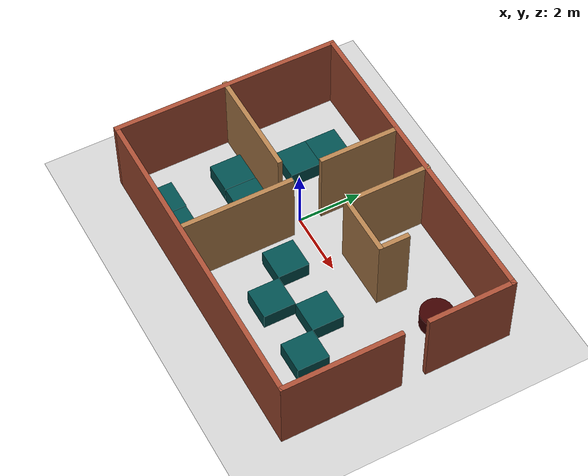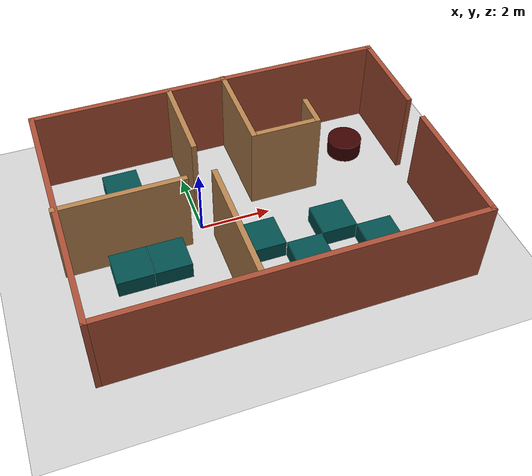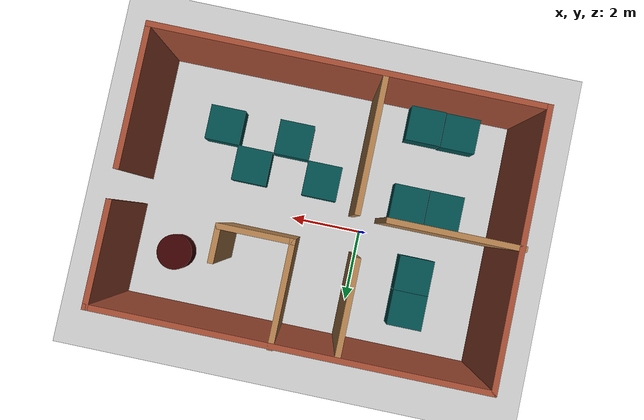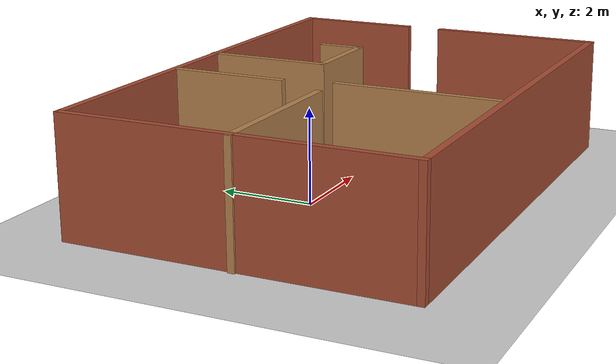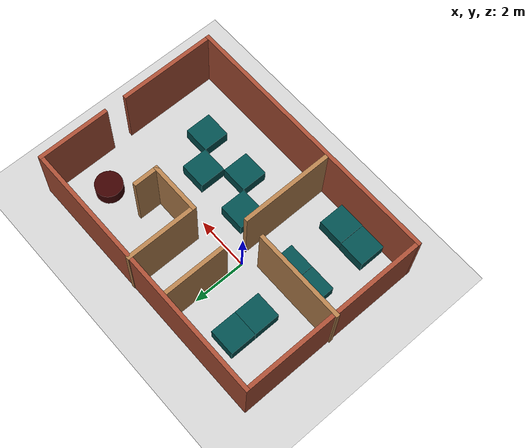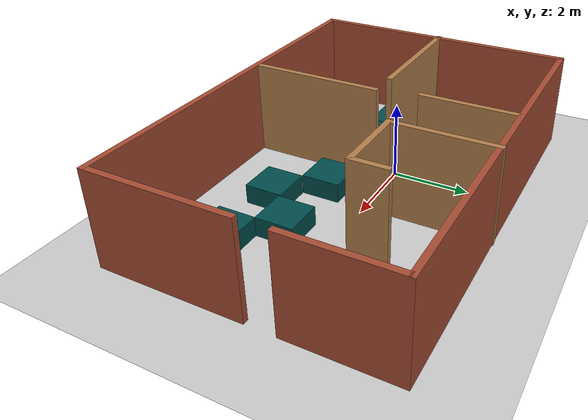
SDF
<sdf version="1.7">
 <world name="default">
  <light name="sun" type="directional">
   <pose>0 0 10 0 -0 0</pose>
   <diffuse>0.8 0.8 0.8 1</diffuse>
   <specular>0.2 0.2 0.2 1</specular>
   <attenuation>
    <range>1000</range>
    <constant>0.9</constant>
    <linear>0.01</linear>
    <quadratic>0.001</quadratic>
   </attenuation>
   <direction>-0.5 0.1 -0.9</direction>
   <spot><inner_angle>0</inner_angle><outer_angle>0</outer_angle><falloff>0</falloff></spot>
  </light>
  <model name="ground_plane">
   <static>1</static>
   <link name="link">
    <collision name="collision">
     <geometry><plane><normal>0 0 1</normal><size>100 100</size></plane></geometry>
     <surface>
      <contact><collide_bitmask>65535</collide_bitmask></contact>
      <friction><ode><mu>100</mu><mu2>50</mu2></ode></friction>
     </surface>
    </collision>
    <visual name="visual">
     <cast_shadows>0</cast_shadows>
     <geometry><plane><normal>0 0 1</normal><size>100 100</size></plane></geometry>
     <material>
      <script><uri>file://media/materials/scripts/gazebo.material</uri><name>Gazebo/Grey</name></script>
     </material>
    </visual>
   </link>
  </model>
  <gravity>0 0 -9.8</gravity>
  <magnetic_field>6e-06 2.3e-05 -4.2e-05</magnetic_field>
  <atmosphere type="adiabatic"/>
  <physics type="ode">
   <max_step_size>0.001</max_step_size>
   <real_time_factor>1</real_time_factor>
   <real_time_update_rate>1000</real_time_update_rate>
  </physics>
  <scene><ambient>0.4 0.4 0.4 1</ambient><background>0.7 0.7 0.7 1</background><shadows>1</shadows></scene>
  <spherical_coordinates>
   <surface_model>EARTH_WGS84</surface_model>
   <latitude_deg>0</latitude_deg>
   <longitude_deg>0</longitude_deg>
   <elevation>0</elevation>
   <heading_deg>0</heading_deg>
  </spherical_coordinates>
  <model name="FloorPlan">
   <pose>1.25438 -0.389256 0 0 -0 0</pose>
   <link name="Wall_0">
    <collision name="Wall_0_Collision">
     <geometry><box><size>10.25 0.15 2.5</size></box></geometry>
     <pose>0 0 1.25 0 -0 0</pose>
    </collision>
    <visual name="Wall_0_Visual">
     <pose>0 0 1.25 0 -0 0</pose>
     <geometry><box><size>10.25 0.15 2.5</size></box></geometry>
     <material>
      <script><uri>file://media/materials/scripts/gazebo.material</uri><name>Gazebo/Bricks</name></script>
      <ambient>1 1 1 1</ambient>
     </material>
     <meta><layer>0</layer></meta>
    </visual>
    <pose>0.023131 3.53844 0 0 -0 0</pose>
   </link>
   <link name="Wall_10">
    <collision name="Wall_10_Collision">
     <geometry><box><size>2 0.15 2.5</size></box></geometry>
     <pose>0 0 1.25 0 -0 0</pose>
    </collision>
    <visual name="Wall_10_Visual">
     <pose>0 0 1.25 0 -0 0</pose>
     <geometry><box><size>2 0.15 2.5</size></box></geometry>
     <material>
      <script><uri>file://media/materials/scripts/gazebo.material</uri><name>Gazebo/Wood</name></script>
      <ambient>1 1 1 1</ambient>
     </material>
     <meta><layer>0</layer></meta>
    </visual>
    <pose>1.40322 0.961565 0 0 -0 0</pose>
   </link>
   <link name="Wall_11">
    <collision name="Wall_11_Collision">
     <geometry><box><size>1 0.15 2.5</size></box></geometry>
     <pose>0 0 1.25 0 -0 0</pose>
    </collision>
    <visual name="Wall_11_Visual">
     <pose>0 0 1.25 0 -0 0</pose>
     <geometry><box><size>1 0.15 2.5</size></box></geometry>
     <material>
      <script><uri>file://media/materials/scripts/gazebo.material</uri><name>Gazebo/Wood</name></script>
      <ambient>1 1 1 1</ambient>
     </material>
     <meta><layer>0</layer></meta>
    </visual>
    <pose>2.32822 1.38657 0 0 -0 1.5708</pose>
   </link>
   <link name="Wall_13">
    <collision name="Wall_13_Collision">
     <geometry><box><size>3.5 0.15 2.5</size></box></geometry>
     <pose>0 0 1.25 0 -0 0</pose>
    </collision>
    <visual name="Wall_13_Visual">
     <pose>0 0 1.25 0 -0 0</pose>
     <geometry><box><size>3.5 0.15 2.5</size></box></geometry>
     <material>
      <script><uri>file://media/materials/scripts/gazebo.material</uri><name>Gazebo/Wood</name></script>
      <ambient>1 1 1 1</ambient>
     </material>
     <meta><layer>0</layer></meta>
    </visual>
    <pose>-3.39813 -0.023679 0 0 -0 0</pose>
   </link>
   <link name="Wall_15">
    <collision name="Wall_15_Collision">
     <geometry><box><size>3.5 0.15 2.5</size></box></geometry>
     <pose>0 0 1.25 0 -0 0</pose>
    </collision>
    <visual name="Wall_15_Visual">
     <pose>0 0 1.25 0 -0 0</pose>
     <geometry><box><size>3.5 0.15 2.5</size></box></geometry>
     <material>
      <script><uri>file://media/materials/scripts/gazebo.material</uri><name>Gazebo/Wood</name></script>
      <ambient>1 1 1 1</ambient>
     </material>
     <meta><layer>0</layer></meta>
    </visual>
    <pose>-0.932752 -1.74494 0 0 -0 -1.5708</pose>
   </link>
   <link name="Wall_17">
    <collision name="Wall_17_Collision">
     <geometry><box><size>2.5 0.15 2.5</size></box></geometry>
     <pose>0 0 1.25 0 -0 0</pose>
    </collision>
    <visual name="Wall_17_Visual">
     <pose>0 0 1.25 0 -0 0</pose>
     <geometry><box><size>2.5 0.15 2.5</size></box></geometry>
     <material>
      <script><uri>file://media/materials/scripts/gazebo.material</uri><name>Gazebo/Wood</name></script>
      <ambient>1 1 1 1</ambient>
     </material>
     <meta><layer>0</layer></meta>
    </visual>
    <pose>-1.16406 2.26159 0 0 -0 1.5708</pose>
   </link>
   <link name="Wall_2">
    <collision name="Wall_2_Collision">
     <geometry><box><size>10.25 0.15 2.5</size></box></geometry>
     <pose>0 0 1.25 0 -0 0</pose>
    </collision>
    <visual name="Wall_2_Visual">
     <pose>0 0 1.25 0 -0 0</pose>
     <geometry><box><size>10.25 0.15 2.5</size></box></geometry>
     <material>
      <script><uri>file://media/materials/scripts/gazebo.material</uri><name>Gazebo/Bricks</name></script>
      <ambient>1 1 1 1</ambient>
     </material>
     <meta><layer>0</layer></meta>
    </visual>
    <pose>0.023131 -3.56156 0 0 -0 3.14159</pose>
   </link>
   <link name="Wall_3">
    <collision name="Wall_3_Collision">
     <geometry><box><size>7.25 0.15 2.5</size></box></geometry>
     <pose>0 0 1.25 0 -0 0</pose>
    </collision>
    <visual name="Wall_3_Visual">
     <pose>0 0 1.25 0 -0 0</pose>
     <geometry><box><size>7.25 0.15 2.5</size></box></geometry>
     <material>
      <script><uri>file://media/materials/scripts/gazebo.material</uri><name>Gazebo/Bricks</name></script>
      <ambient>1 1 1 1</ambient>
     </material>
     <meta><layer>0</layer></meta>
    </visual>
    <pose>-5.02687 -0.011565 0 0 -0 1.5708</pose>
   </link>
   <link name="Wall_5">
    <collision name="Wall_5_Collision">
     <geometry><box><size>2.75 0.15 2.5</size></box></geometry>
     <pose>0 0 1.25 0 -0 0</pose>
    </collision>
    <visual name="Wall_5_Visual">
     <pose>0 0 1.25 0 -0 0</pose>
     <geometry><box><size>2.75 0.15 2.5</size></box></geometry>
     <material>
      <script><uri>file://media/materials/scripts/gazebo.material</uri><name>Gazebo/Bricks</name></script>
      <ambient>1 1 1 1</ambient>
     </material>
     <meta><layer>0</layer></meta>
    </visual>
    <pose>5.07313 2.23843 0 0 -0 -1.5708</pose>
   </link>
   <link name="Wall_7">
    <collision name="Wall_7_Collision">
     <geometry><box><size>3.75 0.15 2.5</size></box></geometry>
     <pose>0 0 1.25 0 -0 0</pose>
    </collision>
    <visual name="Wall_7_Visual">
     <pose>0 0 1.25 0 -0 0</pose>
     <geometry><box><size>3.75 0.15 2.5</size></box></geometry>
     <material>
      <script><uri>file://media/materials/scripts/gazebo.material</uri><name>Gazebo/Bricks</name></script>
      <ambient>1 1 1 1</ambient>
     </material>
     <meta><layer>0</layer></meta>
    </visual>
    <pose>5.07313 -1.76157 0 0 -0 1.5708</pose>
   </link>
   <link name="Wall_9">
    <collision name="Wall_9_Collision">
     <geometry><box><size>2.75 0.15 2.5</size></box></geometry>
     <pose>0 0 1.25 0 -0 0</pose>
    </collision>
    <visual name="Wall_9_Visual">
     <pose>0 0 1.25 0 -0 0</pose>
     <geometry><box><size>2.75 0.15 2.5</size></box></geometry>
     <material>
      <script><uri>file://media/materials/scripts/gazebo.material</uri><name>Gazebo/Wood</name></script>
      <ambient>1 1 1 1</ambient>
     </material>
     <meta><layer>0</layer></meta>
    </visual>
    <pose>0.478215 2.26157 0 0 -0 -1.5708</pose>
   </link>
   <static>1</static>
  </model>
  <model name="unit_box">
   <link name="link">
    <inertial>
     <mass>1</mass>
     <inertia>
      <ixx>0.166667</ixx>
      <ixy>0</ixy>
      <ixz>0</ixz>
      <iyy>0.166667</iyy>
      <iyz>0</iyz>
      <izz>0.166667</izz>
     </inertia>
    </inertial>
    <visual name="visual">
     <geometry><box><size>1 1 1</size></box></geometry>
     <material>
      <script><name>Gazebo/Grey</name><uri>file://media/materials/scripts/gazebo.material</uri></script>
      <shader type="pixel"><normal_map>__default__</normal_map></shader>
      <ambient>0 0.3 0.3 1</ambient>
      <diffuse>0.7 0.7 0.7 1</diffuse>
      <specular>0.01 0.01 0.01 1</specular>
      <emissive>0 0 0 1</emissive>
     </material>
    </visual>
    <collision name="collision">
     <geometry><box><size>1 1 1</size></box></geometry>
     <surface>
      <friction>
       <ode><mu>1</mu><mu2>1</mu2><fdir1>0 0 0</fdir1><slip1>0</slip1><slip2>0</slip2></ode>
       <torsional>
        <coefficient>1</coefficient>
        <patch_radius>0</patch_radius>
        <surface_radius>0</surface_radius>
        <use_patch_radius>1</use_patch_radius>
        <ode><slip>0</slip></ode>
       </torsional>
      </friction>
      <bounce><restitution_coefficient>0</restitution_coefficient><threshold>1e+06</threshold></bounce>
      <contact>
       <collide_without_contact>0</collide_without_contact>
       <collide_without_contact_bitmask>1</collide_without_contact_bitmask>
       <collide_bitmask>1</collide_bitmask>
       <ode>
        <soft_cfm>0</soft_cfm>
        <soft_erp>0.2</soft_erp>
        <kp>1e+13</kp>
        <kd>1</kd>
        <max_vel>0.01</max_vel>
        <min_depth>0</min_depth>
       </ode>
       <bullet>
        <split_impulse>1</split_impulse>
        <split_impulse_penetration_threshold>-0.01</split_impulse_penetration_threshold>
        <soft_cfm>0</soft_cfm>
        <soft_erp>0.2</soft_erp>
        <kp>1e+13</kp>
        <kd>1</kd>
       </bullet>
      </contact>
     </surface>
    </collision>
   </link>
   <link name="link_1">
    <inertial>
     <mass>1</mass>
     <inertia><ixx>0.145833</ixx><ixy>0</ixy><ixz>0</ixz><iyy>0.145833</iyy><iyz>0</iyz><izz>0.125</izz></inertia>
    </inertial>
    <pose>0.645534 3.85087 0 0 -0 0</pose>
    <visual name="visual">
     <geometry><cylinder><radius>0.5</radius><length>1</length></cylinder></geometry>
     <material>
      <lighting>1</lighting>
      <script><uri>file://media/materials/scripts/gazebo.material</uri><name>Gazebo/Grey</name></script>
      <shader type="pixel"><normal_map>__default__</normal_map></shader>
      <ambient>0.233 0 0 0</ambient>
      <diffuse>0.7 0.7 0.7 1</diffuse>
      <specular>0.01 0.01 0.01 1</specular>
      <emissive>0 0 0 1</emissive>
     </material>
    </visual>
    <collision name="collision">
     <geometry><cylinder><radius>0.5</radius><length>1</length></cylinder></geometry>
     <surface>
      <friction>
       <ode><mu>1</mu><mu2>1</mu2><fdir1>0 0 0</fdir1><slip1>0</slip1><slip2>0</slip2></ode>
       <torsional>
        <coefficient>1</coefficient>
        <patch_radius>0</patch_radius>
        <surface_radius>0</surface_radius>
        <use_patch_radius>1</use_patch_radius>
        <ode><slip>0</slip></ode>
       </torsional>
      </friction>
      <bounce><restitution_coefficient>0</restitution_coefficient><threshold>1e+06</threshold></bounce>
      <contact>
       <collide_without_contact>0</collide_without_contact>
       <collide_without_contact_bitmask>1</collide_without_contact_bitmask>
       <collide_bitmask>1</collide_bitmask>
       <ode>
        <soft_cfm>0</soft_cfm>
        <soft_erp>0.2</soft_erp>
        <kp>1e+13</kp>
        <kd>1</kd>
        <max_vel>0.01</max_vel>
        <min_depth>0</min_depth>
       </ode>
       <bullet>
        <split_impulse>1</split_impulse>
        <split_impulse_penetration_threshold>-0.01</split_impulse_penetration_threshold>
        <soft_cfm>0</soft_cfm>
        <soft_erp>0.2</soft_erp>
        <kp>1e+13</kp>
        <kd>1</kd>
       </bullet>
      </contact>
     </surface>
    </collision>
   </link>
   <link name="link_clone">
    <inertial>
     <mass>1</mass>
     <inertia>
      <ixx>0.166667</ixx>
      <ixy>0</ixy>
      <ixz>0</ixz>
      <iyy>0.166667</iyy>
      <iyz>0</iyz>
      <izz>0.166667</izz>
     </inertia>
    </inertial>
    <pose>-0.989948 0.999122 -0 0 -0 0</pose>
    <visual name="visual">
     <geometry><box><size>1 1 1</size></box></geometry>
     <material>
      <script><name>Gazebo/Grey</name><uri>file://media/materials/scripts/gazebo.material</uri></script>
      <shader type="pixel"><normal_map>__default__</normal_map></shader>
      <ambient>0 0.3 0.3 1</ambient>
      <diffuse>0.7 0.7 0.7 1</diffuse>
      <specular>0.01 0.01 0.01 1</specular>
      <emissive>0 0 0 1</emissive>
     </material>
    </visual>
    <collision name="collision">
     <geometry><box><size>1 1 1</size></box></geometry>
     <surface>
      <friction>
       <ode><mu>1</mu><mu2>1</mu2><fdir1>0 0 0</fdir1><slip1>0</slip1><slip2>0</slip2></ode>
       <torsional>
        <coefficient>1</coefficient>
        <patch_radius>0</patch_radius>
        <surface_radius>0</surface_radius>
        <use_patch_radius>1</use_patch_radius>
        <ode><slip>0</slip></ode>
       </torsional>
      </friction>
      <bounce><restitution_coefficient>0</restitution_coefficient><threshold>1e+06</threshold></bounce>
      <contact>
       <collide_without_contact>0</collide_without_contact>
       <collide_without_contact_bitmask>1</collide_without_contact_bitmask>
       <collide_bitmask>1</collide_bitmask>
       <ode>
        <soft_cfm>0</soft_cfm>
        <soft_erp>0.2</soft_erp>
        <kp>1e+13</kp>
        <kd>1</kd>
        <max_vel>0.01</max_vel>
        <min_depth>0</min_depth>
       </ode>
       <bullet>
        <split_impulse>1</split_impulse>
        <split_impulse_penetration_threshold>-0.01</split_impulse_penetration_threshold>
        <soft_cfm>0</soft_cfm>
        <soft_erp>0.2</soft_erp>
        <kp>1e+13</kp>
        <kd>1</kd>
       </bullet>
      </contact>
     </surface>
    </collision>
   </link>
   <link name="link_clone_0">
    <inertial>
     <mass>1</mass>
     <inertia>
      <ixx>0.166667</ixx>
      <ixy>0</ixy>
      <ixz>0</ixz>
      <iyy>0.166667</iyy>
      <iyz>0</iyz>
      <izz>0.166667</izz>
     </inertia>
    </inertial>
    <pose>-2.02543 0.018139 0 0 -0 0</pose>
    <visual name="visual">
     <geometry><box><size>1 1 1</size></box></geometry>
     <material>
      <script><name>Gazebo/Grey</name><uri>file://media/materials/scripts/gazebo.material</uri></script>
      <shader type="pixel"><normal_map>__default__</normal_map></shader>
      <ambient>0 0.3 0.3 1</ambient>
      <diffuse>0.7 0.7 0.7 1</diffuse>
      <specular>0.01 0.01 0.01 1</specular>
      <emissive>0 0 0 1</emissive>
     </material>
    </visual>
    <collision name="collision">
     <geometry><box><size>1 1 1</size></box></geometry>
     <surface>
      <friction>
       <ode><mu>1</mu><mu2>1</mu2><fdir1>0 0 0</fdir1><slip1>0</slip1><slip2>0</slip2></ode>
       <torsional>
        <coefficient>1</coefficient>
        <patch_radius>0</patch_radius>
        <surface_radius>0</surface_radius>
        <use_patch_radius>1</use_patch_radius>
        <ode><slip>0</slip></ode>
       </torsional>
      </friction>
      <bounce><restitution_coefficient>0</restitution_coefficient><threshold>1e+06</threshold></bounce>
      <contact>
       <collide_without_contact>0</collide_without_contact>
       <collide_without_contact_bitmask>1</collide_without_contact_bitmask>
       <collide_bitmask>1</collide_bitmask>
       <ode>
        <soft_cfm>0</soft_cfm>
        <soft_erp>0.2</soft_erp>
        <kp>1e+13</kp>
        <kd>1</kd>
        <max_vel>0.01</max_vel>
        <min_depth>0</min_depth>
       </ode>
       <bullet>
        <split_impulse>1</split_impulse>
        <split_impulse_penetration_threshold>-0.01</split_impulse_penetration_threshold>
        <soft_cfm>0</soft_cfm>
        <soft_erp>0.2</soft_erp>
        <kp>1e+13</kp>
        <kd>1</kd>
       </bullet>
      </contact>
     </surface>
    </collision>
   </link>
   <link name="link_clone_1">
    <inertial>
     <mass>1</mass>
     <inertia>
      <ixx>0.166667</ixx>
      <ixy>0</ixy>
      <ixz>0</ixz>
      <iyy>0.166667</iyy>
      <iyz>0</iyz>
      <izz>0.166667</izz>
     </inertia>
    </inertial>
    <pose>-5.62236 -1.14451 0 0 -0 0</pose>
    <visual name="visual">
     <geometry><box><size>1 1 1</size></box></geometry>
     <material>
      <script><name>Gazebo/Grey</name><uri>file://media/materials/scripts/gazebo.material</uri></script>
      <shader type="pixel"><normal_map>__default__</normal_map></shader>
      <ambient>0 0.3 0.3 1</ambient>
      <diffuse>0.7 0.7 0.7 1</diffuse>
      <specular>0.01 0.01 0.01 1</specular>
      <emissive>0 0 0 1</emissive>
     </material>
    </visual>
    <collision name="collision">
     <geometry><box><size>1 1 1</size></box></geometry>
     <surface>
      <friction>
       <ode><mu>1</mu><mu2>1</mu2><fdir1>0 0 0</fdir1><slip1>0</slip1><slip2>0</slip2></ode>
       <torsional>
        <coefficient>1</coefficient>
        <patch_radius>0</patch_radius>
        <surface_radius>0</surface_radius>
        <use_patch_radius>1</use_patch_radius>
        <ode><slip>0</slip></ode>
       </torsional>
      </friction>
      <bounce><restitution_coefficient>0</restitution_coefficient><threshold>1e+06</threshold></bounce>
      <contact>
       <collide_without_contact>0</collide_without_contact>
       <collide_without_contact_bitmask>1</collide_without_contact_bitmask>
       <collide_bitmask>1</collide_bitmask>
       <ode>
        <soft_cfm>0</soft_cfm>
        <soft_erp>0.2</soft_erp>
        <kp>1e+13</kp>
        <kd>1</kd>
        <max_vel>0.01</max_vel>
        <min_depth>0</min_depth>
       </ode>
       <bullet>
        <split_impulse>1</split_impulse>
        <split_impulse_penetration_threshold>-0.01</split_impulse_penetration_threshold>
        <soft_cfm>0</soft_cfm>
        <soft_erp>0.2</soft_erp>
        <kp>1e+13</kp>
        <kd>1</kd>
       </bullet>
      </contact>
     </surface>
    </collision>
   </link>
   <link name="link_clone_2">
    <inertial>
     <mass>1</mass>
     <inertia>
      <ixx>0.166667</ixx>
      <ixy>0</ixy>
      <ixz>0</ixz>
      <iyy>0.166667</iyy>
      <iyz>0</iyz>
      <izz>0.166667</izz>
     </inertia>
    </inertial>
    <pose>-6.63968 -1.12634 -0 0 -0 0</pose>
    <visual name="visual">
     <geometry><box><size>1 1 1</size></box></geometry>
     <material>
      <script><name>Gazebo/Grey</name><uri>file://media/materials/scripts/gazebo.material</uri></script>
      <shader type="pixel"><normal_map>__default__</normal_map></shader>
      <ambient>0 0.3 0.3 1</ambient>
      <diffuse>0.7 0.7 0.7 1</diffuse>
      <specular>0.01 0.01 0.01 1</specular>
      <emissive>0 0 0 1</emissive>
     </material>
    </visual>
    <collision name="collision">
     <geometry><box><size>1 1 1</size></box></geometry>
     <surface>
      <friction>
       <ode><mu>1</mu><mu2>1</mu2><fdir1>0 0 0</fdir1><slip1>0</slip1><slip2>0</slip2></ode>
       <torsional>
        <coefficient>1</coefficient>
        <patch_radius>0</patch_radius>
        <surface_radius>0</surface_radius>
        <use_patch_radius>1</use_patch_radius>
        <ode><slip>0</slip></ode>
       </torsional>
      </friction>
      <bounce><restitution_coefficient>0</restitution_coefficient><threshold>1e+06</threshold></bounce>
      <contact>
       <collide_without_contact>0</collide_without_contact>
       <collide_without_contact_bitmask>1</collide_without_contact_bitmask>
       <collide_bitmask>1</collide_bitmask>
       <ode>
        <soft_cfm>0</soft_cfm>
        <soft_erp>0.2</soft_erp>
        <kp>1e+13</kp>
        <kd>1</kd>
        <max_vel>0.01</max_vel>
        <min_depth>0</min_depth>
       </ode>
       <bullet>
        <split_impulse>1</split_impulse>
        <split_impulse_penetration_threshold>-0.01</split_impulse_penetration_threshold>
        <soft_cfm>0</soft_cfm>
        <soft_erp>0.2</soft_erp>
        <kp>1e+13</kp>
        <kd>1</kd>
       </bullet>
      </contact>
     </surface>
    </collision>
   </link>
   <link name="link_clone_3">
    <inertial>
     <mass>1</mass>
     <inertia>
      <ixx>0.166667</ixx>
      <ixy>0</ixy>
      <ixz>0</ixz>
      <iyy>0.166667</iyy>
      <iyz>0</iyz>
      <izz>0.166667</izz>
     </inertia>
    </inertial>
    <pose>-5.6042 1.14445 0 0 -0 0</pose>
    <visual name="visual">
     <geometry><box><size>1 1 1</size></box></geometry>
     <material>
      <script><name>Gazebo/Grey</name><uri>file://media/materials/scripts/gazebo.material</uri></script>
      <shader type="pixel"><normal_map>__default__</normal_map></shader>
      <ambient>0 0.3 0.3 1</ambient>
      <diffuse>0.7 0.7 0.7 1</diffuse>
      <specular>0.01 0.01 0.01 1</specular>
      <emissive>0 0 0 1</emissive>
     </material>
    </visual>
    <collision name="collision">
     <geometry><box><size>1 1 1</size></box></geometry>
     <surface>
      <friction>
       <ode><mu>1</mu><mu2>1</mu2><fdir1>0 0 0</fdir1><slip1>0</slip1><slip2>0</slip2></ode>
       <torsional>
        <coefficient>1</coefficient>
        <patch_radius>0</patch_radius>
        <surface_radius>0</surface_radius>
        <use_patch_radius>1</use_patch_radius>
        <ode><slip>0</slip></ode>
       </torsional>
      </friction>
      <bounce><restitution_coefficient>0</restitution_coefficient><threshold>1e+06</threshold></bounce>
      <contact>
       <collide_without_contact>0</collide_without_contact>
       <collide_without_contact_bitmask>1</collide_without_contact_bitmask>
       <collide_bitmask>1</collide_bitmask>
       <ode>
        <soft_cfm>0</soft_cfm>
        <soft_erp>0.2</soft_erp>
        <kp>1e+13</kp>
        <kd>1</kd>
        <max_vel>0.01</max_vel>
        <min_depth>0</min_depth>
       </ode>
       <bullet>
        <split_impulse>1</split_impulse>
        <split_impulse_penetration_threshold>-0.01</split_impulse_penetration_threshold>
        <soft_cfm>0</soft_cfm>
        <soft_erp>0.2</soft_erp>
        <kp>1e+13</kp>
        <kd>1</kd>
       </bullet>
      </contact>
     </surface>
    </collision>
   </link>
   <link name="link_clone_4">
    <inertial>
     <mass>1</mass>
     <inertia>
      <ixx>0.166667</ixx>
      <ixy>0</ixy>
      <ixz>0</ixz>
      <iyy>0.166667</iyy>
      <iyz>0</iyz>
      <izz>0.166667</izz>
     </inertia>
    </inertial>
    <pose>-6.62151 1.14445 0 0 -0 0</pose>
    <visual name="visual">
     <geometry><box><size>1 1 1</size></box></geometry>
     <material>
      <script><name>Gazebo/Grey</name><uri>file://media/materials/scripts/gazebo.material</uri></script>
      <shader type="pixel"><normal_map>__default__</normal_map></shader>
      <ambient>0 0.3 0.3 1</ambient>
      <diffuse>0.7 0.7 0.7 1</diffuse>
      <specular>0.01 0.01 0.01 1</specular>
      <emissive>0 0 0 1</emissive>
     </material>
    </visual>
    <collision name="collision">
     <geometry><box><size>1 1 1</size></box></geometry>
     <surface>
      <friction>
       <ode><mu>1</mu><mu2>1</mu2><fdir1>0 0 0</fdir1><slip1>0</slip1><slip2>0</slip2></ode>
       <torsional>
        <coefficient>1</coefficient>
        <patch_radius>0</patch_radius>
        <surface_radius>0</surface_radius>
        <use_patch_radius>1</use_patch_radius>
        <ode><slip>0</slip></ode>
       </torsional>
      </friction>
      <bounce><restitution_coefficient>0</restitution_coefficient><threshold>1e+06</threshold></bounce>
      <contact>
       <collide_without_contact>0</collide_without_contact>
       <collide_without_contact_bitmask>1</collide_without_contact_bitmask>
       <collide_bitmask>1</collide_bitmask>
       <ode>
        <soft_cfm>0</soft_cfm>
        <soft_erp>0.2</soft_erp>
        <kp>1e+13</kp>
        <kd>1</kd>
        <max_vel>0.01</max_vel>
        <min_depth>0</min_depth>
       </ode>
       <bullet>
        <split_impulse>1</split_impulse>
        <split_impulse_penetration_threshold>-0.01</split_impulse_penetration_threshold>
        <soft_cfm>0</soft_cfm>
        <soft_erp>0.2</soft_erp>
        <kp>1e+13</kp>
        <kd>1</kd>
       </bullet>
      </contact>
     </surface>
    </collision>
   </link>
   <link name="link_clone_5">
    <inertial>
     <mass>1</mass>
     <inertia>
      <ixx>0.166667</ixx>
      <ixy>0</ixy>
      <ixz>0</ixz>
      <iyy>0.166667</iyy>
      <iyz>0</iyz>
      <izz>0.166667</izz>
     </inertia>
    </inertial>
    <pose>-6.14918 4.10556 -0 0 -0 0</pose>
    <visual name="visual">
     <geometry><box><size>1 1 1</size></box></geometry>
     <material>
      <script><name>Gazebo/Grey</name><uri>file://media/materials/scripts/gazebo.material</uri></script>
      <shader type="pixel"><normal_map>__default__</normal_map></shader>
      <ambient>0 0.3 0.3 1</ambient>
      <diffuse>0.7 0.7 0.7 1</diffuse>
      <specular>0.01 0.01 0.01 1</specular>
      <emissive>0 0 0 1</emissive>
     </material>
    </visual>
    <collision name="collision">
     <geometry><box><size>1 1 1</size></box></geometry>
     <surface>
      <friction>
       <ode><mu>1</mu><mu2>1</mu2><fdir1>0 0 0</fdir1><slip1>0</slip1><slip2>0</slip2></ode>
       <torsional>
        <coefficient>1</coefficient>
        <patch_radius>0</patch_radius>
        <surface_radius>0</surface_radius>
        <use_patch_radius>1</use_patch_radius>
        <ode><slip>0</slip></ode>
       </torsional>
      </friction>
      <bounce><restitution_coefficient>0</restitution_coefficient><threshold>1e+06</threshold></bounce>
      <contact>
       <collide_without_contact>0</collide_without_contact>
       <collide_without_contact_bitmask>1</collide_without_contact_bitmask>
       <collide_bitmask>1</collide_bitmask>
       <ode>
        <soft_cfm>0</soft_cfm>
        <soft_erp>0.2</soft_erp>
        <kp>1e+13</kp>
        <kd>1</kd>
        <max_vel>0.01</max_vel>
        <min_depth>0</min_depth>
       </ode>
       <bullet>
        <split_impulse>1</split_impulse>
        <split_impulse_penetration_threshold>-0.01</split_impulse_penetration_threshold>
        <soft_cfm>0</soft_cfm>
        <soft_erp>0.2</soft_erp>
        <kp>1e+13</kp>
        <kd>1</kd>
       </bullet>
      </contact>
     </surface>
    </collision>
   </link>
   <link name="link_clone_6">
    <inertial>
     <mass>1</mass>
     <inertia>
      <ixx>0.166667</ixx>
      <ixy>0</ixy>
      <ixz>0</ixz>
      <iyy>0.166667</iyy>
      <iyz>0</iyz>
      <izz>0.166667</izz>
     </inertia>
    </inertial>
    <pose>-6.14919 3.10642 0 0 -0 0</pose>
    <visual name="visual">
     <geometry><box><size>1 1 1</size></box></geometry>
     <material>
      <script><name>Gazebo/Grey</name><uri>file://media/materials/scripts/gazebo.material</uri></script>
      <shader type="pixel"><normal_map>__default__</normal_map></shader>
      <ambient>0 0.3 0.3 1</ambient>
      <diffuse>0.7 0.7 0.7 1</diffuse>
      <specular>0.01 0.01 0.01 1</specular>
      <emissive>0 0 0 1</emissive>
     </material>
    </visual>
    <collision name="collision">
     <geometry><box><size>1 1 1</size></box></geometry>
     <surface>
      <friction>
       <ode><mu>1</mu><mu2>1</mu2><fdir1>0 0 0</fdir1><slip1>0</slip1><slip2>0</slip2></ode>
       <torsional>
        <coefficient>1</coefficient>
        <patch_radius>0</patch_radius>
        <surface_radius>0</surface_radius>
        <use_patch_radius>1</use_patch_radius>
        <ode><slip>0</slip></ode>
       </torsional>
      </friction>
      <bounce><restitution_coefficient>0</restitution_coefficient><threshold>1e+06</threshold></bounce>
      <contact>
       <collide_without_contact>0</collide_without_contact>
       <collide_without_contact_bitmask>1</collide_without_contact_bitmask>
       <collide_bitmask>1</collide_bitmask>
       <ode>
        <soft_cfm>0</soft_cfm>
        <soft_erp>0.2</soft_erp>
        <kp>1e+13</kp>
        <kd>1</kd>
        <max_vel>0.01</max_vel>
        <min_depth>0</min_depth>
       </ode>
       <bullet>
        <split_impulse>1</split_impulse>
        <split_impulse_penetration_threshold>-0.01</split_impulse_penetration_threshold>
        <soft_cfm>0</soft_cfm>
        <soft_erp>0.2</soft_erp>
        <kp>1e+13</kp>
        <kd>1</kd>
       </bullet>
      </contact>
     </surface>
    </collision>
   </link>
   <link name="link_clone_7">
    <inertial>
     <mass>1</mass>
     <inertia>
      <ixx>0.166667</ixx>
      <ixy>0</ixy>
      <ixz>0</ixz>
      <iyy>0.166667</iyy>
      <iyz>0</iyz>
      <izz>0.166667</izz>
     </inertia>
    </inertial>
    <pose>-3.04223 1.01693 -0 0 -0 0</pose>
    <visual name="visual">
     <geometry><box><size>1 1 1</size></box></geometry>
     <material>
      <script><name>Gazebo/Grey</name><uri>file://media/materials/scripts/gazebo.material</uri></script>
      <shader type="pixel"><normal_map>__default__</normal_map></shader>
      <ambient>0 0.3 0.3 1</ambient>
      <diffuse>0.7 0.7 0.7 1</diffuse>
      <specular>0.01 0.01 0.01 1</specular>
      <emissive>0 0 0 1</emissive>
     </material>
    </visual>
    <collision name="collision">
     <geometry><box><size>1 1 1</size></box></geometry>
     <surface>
      <friction>
       <ode><mu>1</mu><mu2>1</mu2><fdir1>0 0 0</fdir1><slip1>0</slip1><slip2>0</slip2></ode>
       <torsional>
        <coefficient>1</coefficient>
        <patch_radius>0</patch_radius>
        <surface_radius>0</surface_radius>
        <use_patch_radius>1</use_patch_radius>
        <ode><slip>0</slip></ode>
       </torsional>
      </friction>
      <bounce><restitution_coefficient>0</restitution_coefficient><threshold>1e+06</threshold></bounce>
      <contact>
       <collide_without_contact>0</collide_without_contact>
       <collide_without_contact_bitmask>1</collide_without_contact_bitmask>
       <collide_bitmask>1</collide_bitmask>
       <ode>
        <soft_cfm>0</soft_cfm>
        <soft_erp>0.2</soft_erp>
        <kp>1e+13</kp>
        <kd>1</kd>
        <max_vel>0.01</max_vel>
        <min_depth>0</min_depth>
       </ode>
       <bullet>
        <split_impulse>1</split_impulse>
        <split_impulse_penetration_threshold>-0.01</split_impulse_penetration_threshold>
        <soft_cfm>0</soft_cfm>
        <soft_erp>0.2</soft_erp>
        <kp>1e+13</kp>
        <kd>1</kd>
       </bullet>
      </contact>
     </surface>
    </collision>
   </link>
   <static>0</static>
   <pose>4.40313 -2.21275 0 0 -0 0</pose>
  </model>
 </world>
</sdf>
